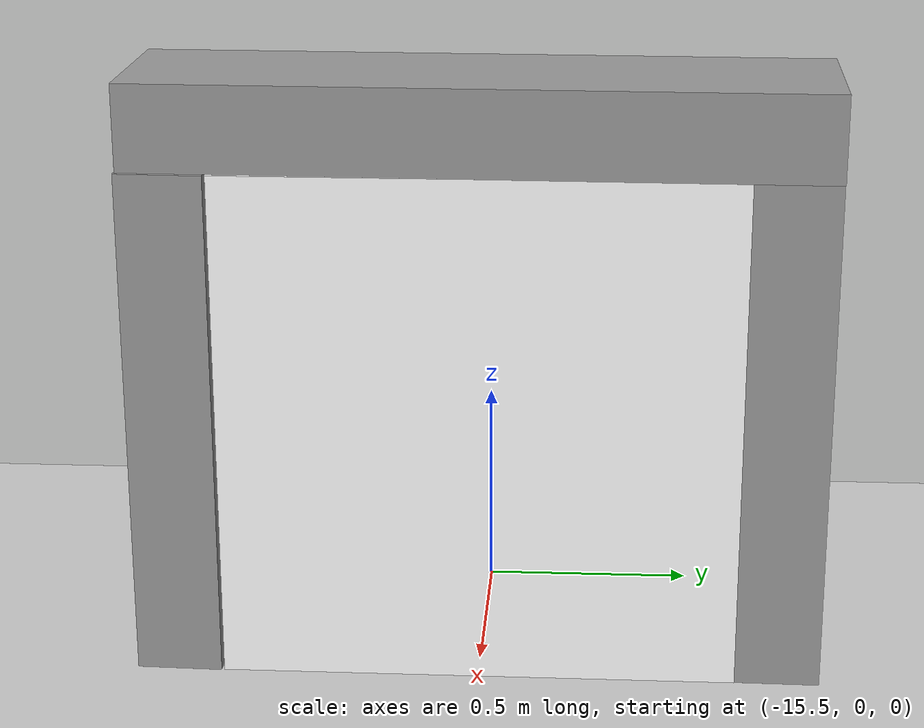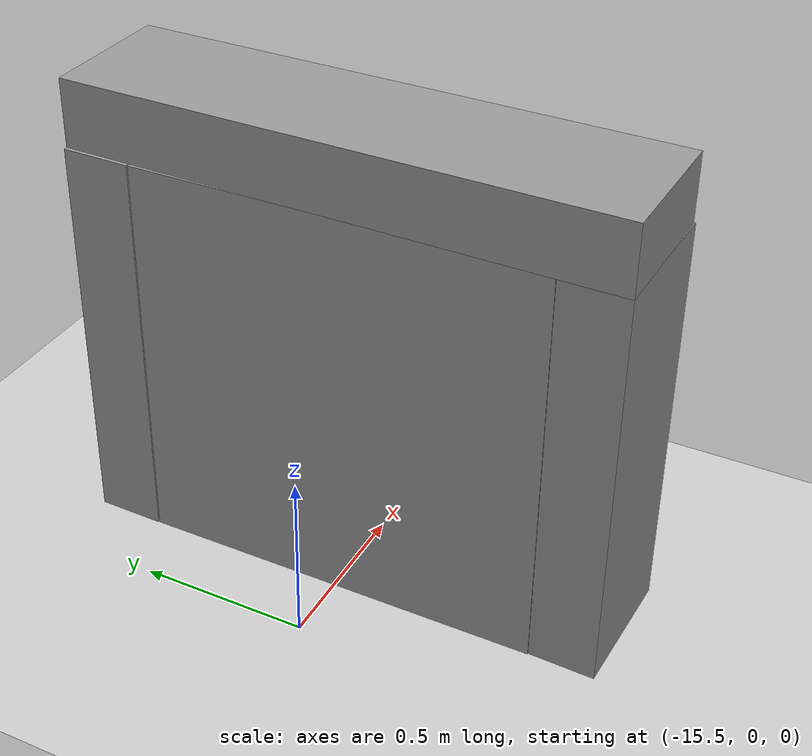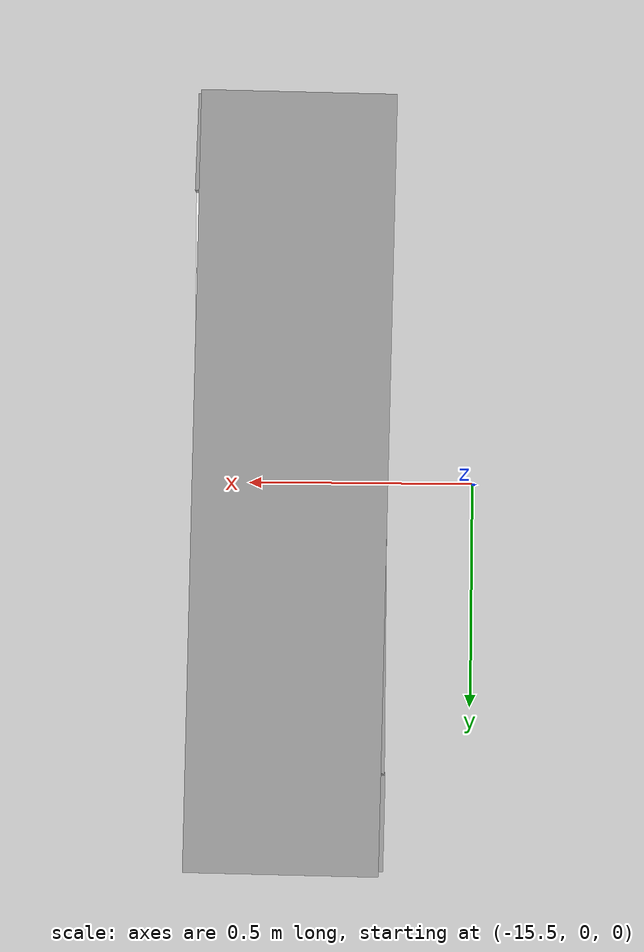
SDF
<sdf version="1.6">
 <world name="default">
  <light name="sun" type="directional">
   <pose>0 0 10 0 -0 0</pose>
   <diffuse>0.8 0.8 0.8 1</diffuse>
   <specular>0.1 0.1 0.1 1</specular>
   <attenuation>
    <range>1000</range>
    <constant>0.9</constant>
    <linear>0.01</linear>
    <quadratic>0.001</quadratic>
   </attenuation>
   <direction>-0.5 0.5 -1</direction>
  </light>
  <model name="ground_plane">
   <static>1</static>
   <link name="link">
    <collision name="collision">
     <geometry><plane><normal>0 0 1</normal><size>100 100</size></plane></geometry>
     <surface><friction><ode><mu>100</mu><mu2>50</mu2></ode></friction></surface>
    </collision>
    <visual name="visual">
     <cast_shadows>0</cast_shadows>
     <geometry><plane><normal>0 0 1</normal><size>100 100</size></plane></geometry>
     <material>
      <script><uri>file://media/materials/scripts/gazebo.material</uri><name>Gazebo/Grey</name></script>
     </material>
    </visual>
   </link>
  </model>
  <gravity>0 0 -9.8</gravity>
  <magnetic_field>6e-06 2.3e-05 -4.2e-05</magnetic_field>
  <atmosphere type="adiabatic"/>
  <physics name="default_physics" default="0" type="ode">
   <max_step_size>0.001</max_step_size>
   <real_time_factor>1</real_time_factor>
   <real_time_update_rate>1000</real_time_update_rate>
  </physics>
  <scene><ambient>0.4 0.4 0.4 1</ambient><background>0.7 0.7 0.7 1</background><shadows>1</shadows></scene>
  <spherical_coordinates>
   <surface_model>EARTH_WGS84</surface_model>
   <latitude_deg>0</latitude_deg>
   <longitude_deg>0</longitude_deg>
   <elevation>0</elevation>
   <heading_deg>0</heading_deg>
  </spherical_coordinates>
  <model name="oneMarker">
   <link name="link_0">
    <pose>-0 -0 0.6 0 -0 0</pose>
    <inertial>
     <mass>100</mass>
     <inertia>
      <ixx>0.166667</ixx>
      <ixy>0</ixy>
      <ixz>0</ixz>
      <iyy>0.166667</iyy>
      <iyz>0</iyz>
      <izz>0.166667</izz>
     </inertia>
    </inertial>
    <visual name="visual">
     <geometry><box><size>0.2 1.2 1.2</size></box></geometry>
     <material>
      <script><uri>model://oneMarker/materials/scripts/repeated.material</uri><name>RepeatedTexture</name></script>
      <ambient>1 1 1 1</ambient>
      <diffuse>1 1 1 1</diffuse>
      <specular>0 0 0 1</specular>
      <emissive>0 0 0 1</emissive>
      <shader type="vertex"><normal_map>__default__</normal_map></shader>
     </material>
    </visual>
    <collision name="collision">
     <geometry><box><size>0.2 1.2 1.2</size></box></geometry>
     <surface>
      <friction>
       <ode><mu>1</mu><mu2>1</mu2><fdir1>0 0 0</fdir1><slip1>0</slip1><slip2>0</slip2></ode>
       <torsional>
        <coefficient>1</coefficient>
        <patch_radius>0</patch_radius>
        <surface_radius>0</surface_radius>
        <use_patch_radius>1</use_patch_radius>
        <ode><slip>0</slip></ode>
       </torsional>
      </friction>
      <bounce><restitution_coefficient>0</restitution_coefficient><threshold>1e+06</threshold></bounce>
      <contact>
       <collide_without_contact>0</collide_without_contact>
       <collide_without_contact_bitmask>1</collide_without_contact_bitmask>
       <collide_bitmask>1</collide_bitmask>
       <ode>
        <soft_cfm>0</soft_cfm>
        <soft_erp>0.2</soft_erp>
        <kp>1e+13</kp>
        <kd>1</kd>
        <max_vel>0.01</max_vel>
        <min_depth>0</min_depth>
       </ode>
       <bullet>
        <split_impulse>1</split_impulse>
        <split_impulse_penetration_threshold>-0.01</split_impulse_penetration_threshold>
        <soft_cfm>0</soft_cfm>
        <soft_erp>0.2</soft_erp>
        <kp>1e+13</kp>
        <kd>1</kd>
       </bullet>
      </contact>
     </surface>
    </collision>
   </link>
   <link name="link_1">
    <pose>-0.2 0 0.6 0 -0 0</pose>
    <inertial>
     <mass>1</mass>
     <inertia>
      <ixx>0.166667</ixx>
      <ixy>0</ixy>
      <ixz>0</ixz>
      <iyy>0.166667</iyy>
      <iyz>0</iyz>
      <izz>0.166667</izz>
     </inertia>
    </inertial>
    <visual name="visual">
     <geometry><box><size>0.2 1.2 1.2</size></box></geometry>
     <material>
      <lighting>1</lighting>
      <script><uri>file://media/materials/scripts/gazebo.material</uri><name>Gazebo/Grey</name></script>
      <ambient>0.3 0.3 0.3 1</ambient>
      <diffuse>0.7 0.7 0.7 1</diffuse>
      <specular>0.01 0.01 0.01 1</specular>
      <emissive>0 0 0 1</emissive>
      <shader type="vertex"><normal_map>__default__</normal_map></shader>
     </material>
    </visual>
    <collision name="collision">
     <geometry><box><size>0.2 1.2 1.2</size></box></geometry>
     <surface>
      <friction>
       <ode><mu>1</mu><mu2>1</mu2><fdir1>0 0 0</fdir1><slip1>0</slip1><slip2>0</slip2></ode>
       <torsional>
        <coefficient>1</coefficient>
        <patch_radius>0</patch_radius>
        <surface_radius>0</surface_radius>
        <use_patch_radius>1</use_patch_radius>
        <ode><slip>0</slip></ode>
       </torsional>
      </friction>
      <bounce><restitution_coefficient>0</restitution_coefficient><threshold>1e+06</threshold></bounce>
      <contact>
       <collide_without_contact>0</collide_without_contact>
       <collide_without_contact_bitmask>1</collide_without_contact_bitmask>
       <collide_bitmask>1</collide_bitmask>
       <ode>
        <soft_cfm>0</soft_cfm>
        <soft_erp>0.2</soft_erp>
        <kp>1e+13</kp>
        <kd>1</kd>
        <max_vel>0.01</max_vel>
        <min_depth>0</min_depth>
       </ode>
       <bullet>
        <split_impulse>1</split_impulse>
        <split_impulse_penetration_threshold>-0.01</split_impulse_penetration_threshold>
        <soft_cfm>0</soft_cfm>
        <soft_erp>0.2</soft_erp>
        <kp>1e+13</kp>
        <kd>1</kd>
       </bullet>
      </contact>
     </surface>
    </collision>
   </link>
   <link name="link_2">
    <pose>-0.1 0.7 0.6 -9e-06 -1.1e-05 -0.015418</pose>
    <inertial>
     <mass>1</mass>
     <inertia>
      <ixx>0.166667</ixx>
      <ixy>0</ixy>
      <ixz>0</ixz>
      <iyy>0.166667</iyy>
      <iyz>0</iyz>
      <izz>0.166667</izz>
     </inertia>
    </inertial>
    <visual name="visual">
     <geometry><box><size>0.4 0.2 1.2</size></box></geometry>
     <material>
      <lighting>1</lighting>
      <script><uri>file://media/materials/scripts/gazebo.material</uri><name>Gazebo/Grey</name></script>
      <ambient>0.3 0.3 0.3 1</ambient>
      <diffuse>0.7 0.7 0.7 1</diffuse>
      <specular>0.01 0.01 0.01 1</specular>
      <emissive>0 0 0 1</emissive>
      <shader type="vertex"><normal_map>__default__</normal_map></shader>
     </material>
    </visual>
    <collision name="collision">
     <geometry><box><size>0.4 0.2 1.2</size></box></geometry>
     <surface>
      <friction>
       <ode><mu>1</mu><mu2>1</mu2><fdir1>0 0 0</fdir1><slip1>0</slip1><slip2>0</slip2></ode>
       <torsional>
        <coefficient>1</coefficient>
        <patch_radius>0</patch_radius>
        <surface_radius>0</surface_radius>
        <use_patch_radius>1</use_patch_radius>
        <ode><slip>0</slip></ode>
       </torsional>
      </friction>
      <bounce><restitution_coefficient>0</restitution_coefficient><threshold>1e+06</threshold></bounce>
      <contact>
       <collide_without_contact>0</collide_without_contact>
       <collide_without_contact_bitmask>1</collide_without_contact_bitmask>
       <collide_bitmask>1</collide_bitmask>
       <ode>
        <soft_cfm>0</soft_cfm>
        <soft_erp>0.2</soft_erp>
        <kp>1e+13</kp>
        <kd>1</kd>
        <max_vel>0.01</max_vel>
        <min_depth>0</min_depth>
       </ode>
       <bullet>
        <split_impulse>1</split_impulse>
        <split_impulse_penetration_threshold>-0.01</split_impulse_penetration_threshold>
        <soft_cfm>0</soft_cfm>
        <soft_erp>0.2</soft_erp>
        <kp>1e+13</kp>
        <kd>1</kd>
       </bullet>
      </contact>
     </surface>
    </collision>
   </link>
   <link name="link_2_clone">
    <pose>-0.1 -0.7 0.6 -1.8e-05 -2.2e-05 -0.030836</pose>
    <inertial>
     <mass>1</mass>
     <inertia>
      <ixx>0.166667</ixx>
      <ixy>0</ixy>
      <ixz>0</ixz>
      <iyy>0.166667</iyy>
      <iyz>0</iyz>
      <izz>0.166667</izz>
     </inertia>
    </inertial>
    <visual name="visual">
     <geometry><box><size>0.4 0.2 1.2</size></box></geometry>
     <material>
      <lighting>1</lighting>
      <script><uri>file://media/materials/scripts/gazebo.material</uri><name>Gazebo/Grey</name></script>
      <ambient>0.3 0.3 0.3 1</ambient>
      <diffuse>0.7 0.7 0.7 1</diffuse>
      <specular>0.01 0.01 0.01 1</specular>
      <emissive>0 0 0 1</emissive>
      <shader type="vertex"><normal_map>__default__</normal_map></shader>
     </material>
    </visual>
    <collision name="collision">
     <geometry><box><size>0.4 0.2 1.2</size></box></geometry>
     <surface>
      <friction>
       <ode><mu>1</mu><mu2>1</mu2><fdir1>0 0 0</fdir1><slip1>0</slip1><slip2>0</slip2></ode>
       <torsional>
        <coefficient>1</coefficient>
        <patch_radius>0</patch_radius>
        <surface_radius>0</surface_radius>
        <use_patch_radius>1</use_patch_radius>
        <ode><slip>0</slip></ode>
       </torsional>
      </friction>
      <bounce><restitution_coefficient>0</restitution_coefficient><threshold>1e+06</threshold></bounce>
      <contact>
       <collide_without_contact>0</collide_without_contact>
       <collide_without_contact_bitmask>1</collide_without_contact_bitmask>
       <collide_bitmask>1</collide_bitmask>
       <ode>
        <soft_cfm>0</soft_cfm>
        <soft_erp>0.2</soft_erp>
        <kp>1e+13</kp>
        <kd>1</kd>
        <max_vel>0.01</max_vel>
        <min_depth>0</min_depth>
       </ode>
       <bullet>
        <split_impulse>1</split_impulse>
        <split_impulse_penetration_threshold>-0.01</split_impulse_penetration_threshold>
        <soft_cfm>0</soft_cfm>
        <soft_erp>0.2</soft_erp>
        <kp>1e+13</kp>
        <kd>1</kd>
       </bullet>
      </contact>
     </surface>
    </collision>
   </link>
   <link name="link_3">
    <pose>-0.1 0 1.3 -9e-06 -1.1e-05 -0.015418</pose>
    <inertial>
     <mass>1</mass>
     <inertia>
      <ixx>0.166667</ixx>
      <ixy>0</ixy>
      <ixz>0</ixz>
      <iyy>0.166667</iyy>
      <iyz>0</iyz>
      <izz>0.166667</izz>
     </inertia>
    </inertial>
    <visual name="visual">
     <geometry><box><size>0.4 1.6 0.2</size></box></geometry>
     <material>
      <lighting>1</lighting>
      <script><uri>file://media/materials/scripts/gazebo.material</uri><name>Gazebo/Grey</name></script>
      <ambient>0.3 0.3 0.3 1</ambient>
      <diffuse>0.7 0.7 0.7 1</diffuse>
      <specular>0.01 0.01 0.01 1</specular>
      <emissive>0 0 0 1</emissive>
      <shader type="vertex"><normal_map>__default__</normal_map></shader>
     </material>
    </visual>
    <collision name="collision">
     <geometry><box><size>0.4 1.6 0.2</size></box></geometry>
     <surface>
      <friction>
       <ode><mu>1</mu><mu2>1</mu2><fdir1>0 0 0</fdir1><slip1>0</slip1><slip2>0</slip2></ode>
       <torsional>
        <coefficient>1</coefficient>
        <patch_radius>0</patch_radius>
        <surface_radius>0</surface_radius>
        <use_patch_radius>1</use_patch_radius>
        <ode><slip>0</slip></ode>
       </torsional>
      </friction>
      <bounce><restitution_coefficient>0</restitution_coefficient><threshold>1e+06</threshold></bounce>
      <contact>
       <collide_without_contact>0</collide_without_contact>
       <collide_without_contact_bitmask>1</collide_without_contact_bitmask>
       <collide_bitmask>1</collide_bitmask>
       <ode>
        <soft_cfm>0</soft_cfm>
        <soft_erp>0.2</soft_erp>
        <kp>1e+13</kp>
        <kd>1</kd>
        <max_vel>0.01</max_vel>
        <min_depth>0</min_depth>
       </ode>
       <bullet>
        <split_impulse>1</split_impulse>
        <split_impulse_penetration_threshold>-0.01</split_impulse_penetration_threshold>
        <soft_cfm>0</soft_cfm>
        <soft_erp>0.2</soft_erp>
        <kp>1e+13</kp>
        <kd>1</kd>
       </bullet>
      </contact>
     </surface>
    </collision>
   </link>
   <joint name="link_0_JOINT_0_0" type="fixed">
    <parent>link_0</parent>
    <child>link_2</child>
    <physics>
     <ode><limit><cfm>0</cfm><erp>0.2</erp></limit><suspension><cfm>0</cfm><erp>0.2</erp></suspension></ode>
    </physics>
   </joint>
   <joint name="link_0_JOINT_0" type="fixed">
    <parent>link_0</parent>
    <child>link_1</child>
    <physics>
     <ode><limit><cfm>0</cfm><erp>0.2</erp></limit><suspension><cfm>0</cfm><erp>0.2</erp></suspension></ode>
    </physics>
   </joint>
   <joint name="link_0_JOINT_1" type="fixed">
    <parent>link_0</parent>
    <child>link_2_clone</child>
    <physics>
     <ode><limit><cfm>0</cfm><erp>0.2</erp></limit><suspension><cfm>0</cfm><erp>0.2</erp></suspension></ode>
    </physics>
   </joint>
   <joint name="link_0_JOINT_2" type="fixed">
    <parent>link_0</parent>
    <child>link_3</child>
    <physics>
     <ode><limit><cfm>0</cfm><erp>0.2</erp></limit><suspension><cfm>0</cfm><erp>0.2</erp></suspension></ode>
    </physics>
   </joint>
   <static>1</static>
   <pose>-15 0 0 0 -0 0</pose>
  </model>
  <audio><device>default</device></audio>
 </world>
</sdf>
